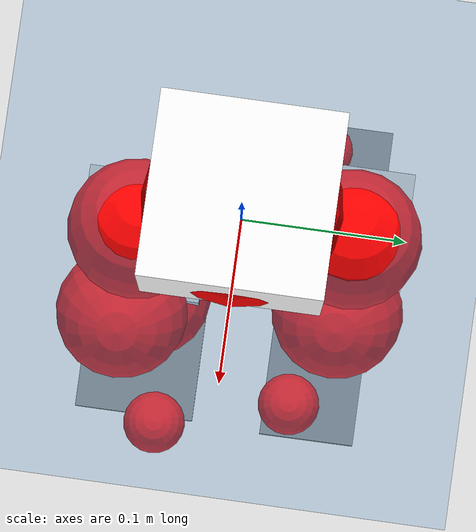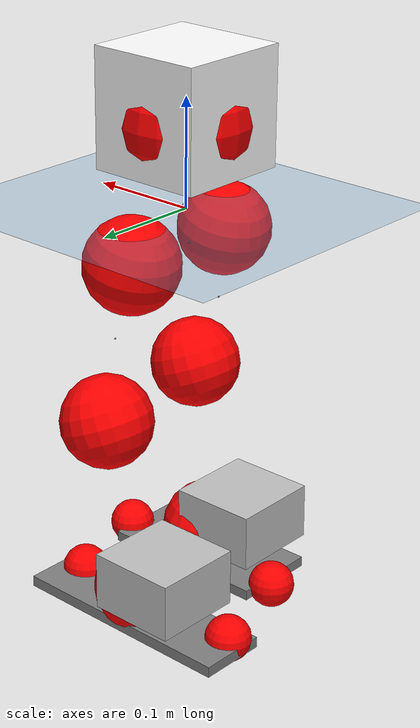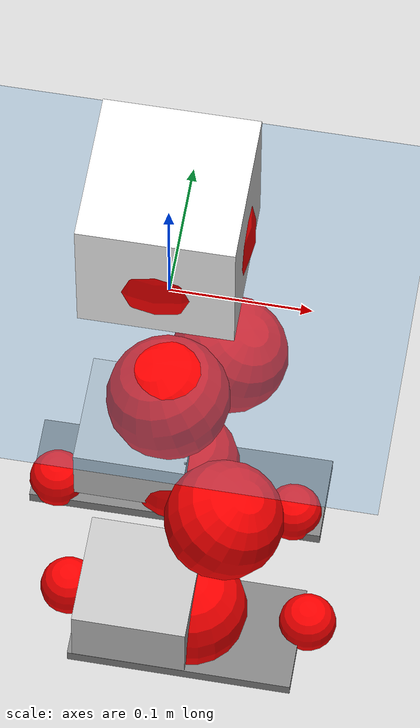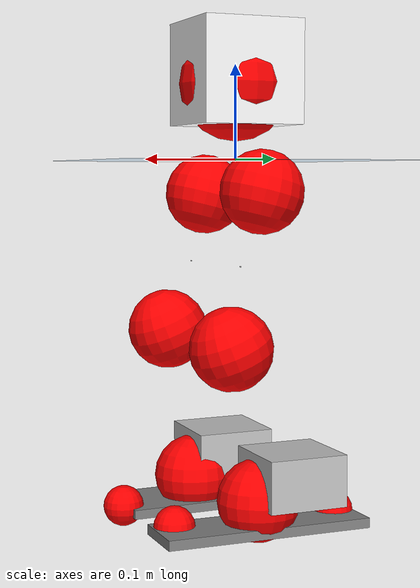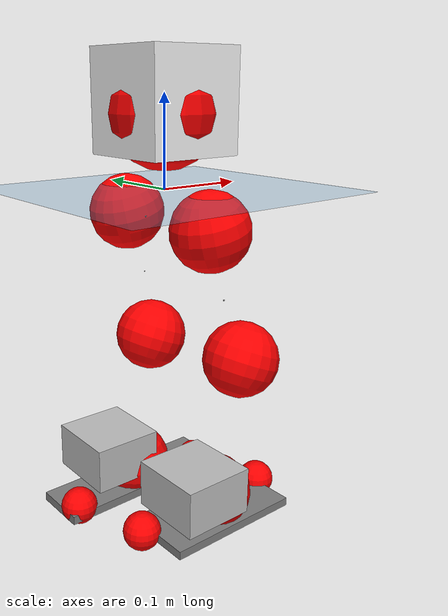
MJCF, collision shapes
<mujoco model="pi_12dof_release_v1">
  <compiler angle="radian" assetdir="assets" balanceinertia="true" inertiafromgeom="false"/>

  <option timestep="0.005" density="1.2" viscosity="2e-05"/>

  <size nkey="1"/>

  <visual>
    <quality shadowsize="8192"/>
    <map shadowclip="0.5"/>
  </visual>

  <default>
    <default class="/">
      <joint armature="0.01" damping="0.01" frictionloss="0.01"/>
      <geom contype="0" conaffinity="0" group="1" solref="-1000 -80"/>
      <site size="0.01 0.005 0.005" group="5"/>
      <general forcelimited="true" biastype="affine" gainprm="20" biasprm="0 -20 -0.5"/>
      <default class="foot">
        <geom size="0.0845 0.036 0.005" type="box" condim="6" group="4" priority="1" friction="0.9 0.2 0.2" solimp="0.015 1 0.005"/>
      </default>
      <default class="reward_collision_sphere">
        <geom group="5" rgba="1 0 0 1"/>
      </default>
    </default>
  </default>

  <asset>
    <texture type="skybox" colorspace="auto" name="//unnamed_texture_0" builtin="gradient" rgb1="0.95 0.95 0.95" rgb2="0.95 0.95 0.95" width="100" height="600"/>
    <texture type="2d" colorspace="auto" name="texplane" builtin="checker" rgb1="0.345 0.575 0.748" rgb2="0.345 0.575 0.748" markrgb="1 1 1" width="512" height="512"/>
    <material name="MatPlane" class="/" texture="texplane" texuniform="true" texrepeat="2 2" specular="0.9"/>
    <mesh name="baselink_1" class="/" file="baselink_1.STL"/>
    <mesh name="r_hip_pitch_link" class="/" file="r_hip_pitch_link.STL"/>
    <mesh name="r_hip_roll_link" class="/" file="r_hip_roll_link.STL"/>
    <mesh name="r_thigh_link" class="/" file="r_thigh_link.STL"/>
    <mesh name="r_calf_link" class="/" file="r_calf_link.STL"/>
    <mesh name="r_ankle_pitch_link" class="/" file="r_ankle_pitch_link.STL"/>
    <mesh name="r_ankle_roll_link" class="/" file="r_ankle_roll_link.STL"/>
    <mesh name="l_hip_pitch_link" class="/" file="l_hip_pitch_link.STL"/>
    <mesh name="l_hip_roll_link" class="/" file="l_hip_roll_link.STL"/>
    <mesh name="l_thigh_link" class="/" file="l_thigh_link.STL"/>
    <mesh name="l_calf_link" class="/" file="l_calf_link.STL"/>
    <mesh name="l_ankle_pitch_link" class="/" file="l_ankle_pitch_link.STL"/>
    <mesh name="l_ankle_roll_link" class="/" file="l_ankle_roll_link.STL"/>
  </asset>

  <worldbody>
    <geom name="floor" class="/" size="100 100 0.125" type="plane" group="0" material="MatPlane"/>
    <light name="toplight_shadow" class="/" pos="0 0 5" dir="0.0990148 0.0990148 -0.990148" type="directional" ambient="0.04 0.04 0.04" diffuse="0.55 0.55 0.55" specular="0.12 0.12 0.12"/>
    <light name="toplight_fill" class="/" pos="0 0 5" dir="0.0990148 0.0990148 -0.990148" type="directional" castshadow="false" ambient="0.04 0.04 0.04" diffuse="0.3 0.3 0.3" specular="0.08 0.08 0.08"/>
    <body name="trunk" pos="6.11848e-05 5.03479e-05 -0.00119129" quat="0.999999 -0.000516369 -0.000872608 0.000594868">
      <inertial pos="0.0139457 0.00739712 0.0484905" quat="0.693942 0.0092423 0.00934882 0.719911" mass="2.4779" diaginertia="0.0435854 0.00230264 0.0085041"/>
      <joint name="//unnamed_joint_0" type="free"/>
      <geom name="//unnamed_geom_1" class="/" type="mesh" density="0" rgba="1 1 1 1" mesh="baselink_1"/>
      <geom name="//unnamed_geom_2" class="/" size="0.0541264 0.0541264 0.0541264" pos="0 0 0.0917034" type="box" rgba="1 1 1 1"/>
      <geom name="//unnamed_geom_3" class="reward_collision_sphere" size="0.059539" pos="0 0 0.0802404"/>
      <site name="imu" class="/" pos="-0.043792 0.00238934 0.0435172" size="0.0108253"/>
      <camera name="track" class="/" pos="0 -1.52145 0" quat="0.707107 0.707107 0 0" mode="trackcom"/>
      <camera name="ego_camera" class="/" pos="0.100542 0 0.206333" quat="-0.5 -0.5 0.5 0.5"/>
      <body name="r_hip_pitch_link" pos="0.00585051 -0.0107098 -0.0344254" quat="0.992207 -0.000160514 -0.124601 5.93135e-06">
        <inertial pos="0.00179461 -0.0361853 -0.000395335" quat="-0.0215017 0.705858 -0.0284006 0.707457" mass="0.511371" diaginertia="0.000542061 3.07013e-05 0.000185824"/>
        <joint name="r_hip_pitch_joint" class="/" pos="0 0 0" axis="-0.0169221 -0.999854 0.0025083" range="-1.70196 1.43669" armature="0.0148088" damping="0.0172294" frictionloss="0.0119341"/>
        <geom name="//unnamed_geom_4" class="/" type="mesh" density="0" rgba="0.75294 0.75294 0.75294 1" mesh="r_hip_pitch_link"/>
        <geom name="//unnamed_geom_5" class="/" size="0.000541264 0.000541264 0.000541264" type="box" rgba="0.75294 0.75294 0.75294 1"/>
        <body name="r_hip_roll_link" pos="0.00379709 -0.052577 -0.00243339" quat="0.999991 -0.00390583 0.00120257 0.000623659">
          <inertial pos="0.00131083 0.0005485 -0.073692" quat="0.711143 -0.0815216 -0.111815 0.689295" mass="0.513591" diaginertia="0.00142289 7.7923e-05 0.000246526"/>
          <joint name="r_hip_roll_joint" class="/" pos="0 0 0" axis="-0.999587 0.0106755 -0.026696" stiffness="0.00380123" range="-0.0864243 0.509174" armature="0.0131739" damping="0.0484969" frictionloss="0.0058554"/>
          <geom name="//unnamed_geom_6" class="/" type="mesh" density="0" rgba="0.75294 0.75294 0.75294 1" mesh="r_hip_roll_link"/>
          <geom name="//unnamed_geom_7" class="/" size="0.000541264 0.000541264 0.000541264" type="box" rgba="0.75294 0.75294 0.75294 1"/>
          <geom name="//unnamed_geom_8" class="reward_collision_sphere" size="0.0433011"/>
          <body name="r_thigh_link" pos="-0.00547826 -0.00790245 -0.0752144" quat="1 0.000105826 5.72861e-05 0.000150323">
            <inertial pos="0.00212777 0.0019146 -0.0519159" quat="0.741309 0.671146 -0.00232844 0.00438681" mass="0.142776" diaginertia="0.000581648 2.4347e-05 0.000114059"/>
            <joint name="r_thigh_joint" class="/" pos="0 0 0" axis="0.00227129 -0.000984539 -0.999997" range="-0.192505 0.560228" armature="0.00552647" damping="0.00652361" frictionloss="0.00920739"/>
            <geom name="//unnamed_geom_9" class="/" type="mesh" density="0" rgba="0.75294 0.75294 0.75294 1" mesh="r_thigh_link"/>
            <geom name="//unnamed_geom_10" class="/" size="0.000541264 0.000541264 0.000541264" type="box" rgba="0.75294 0.75294 0.75294 1"/>
            <body name="r_calf_link" pos="0.00898568 0.000844247 -0.0789635" quat="0.947745 0.000452019 0.319028 0.000169766">
              <inertial pos="0.00399291 0.0101128 -0.0752291" quat="0.998682 -0.00151063 -0.0452761 0.0241085" mass="1.02161" diaginertia="0.016706 0.000806329 0.000376073"/>
              <joint name="r_calf_joint" class="/" pos="0 0 0" axis="0.022656 -0.999637 0.0146136" stiffness="0.00106294" range="-1.64093 0.608849" armature="0.0124763" damping="0.00535621" frictionloss="0.0118274"/>
              <geom name="//unnamed_geom_11" class="/" type="mesh" density="0" rgba="0.75294 0.75294 0.75294 1" mesh="r_calf_link"/>
              <geom name="//unnamed_geom_12" class="/" size="0.000541264 0.000541264 0.000541264" type="box" rgba="0.75294 0.75294 0.75294 1"/>
              <geom name="//unnamed_geom_13" class="reward_collision_sphere" size="0.0433011"/>
              <body name="r_ankle_pitch_link" pos="-0.00432989 0.00427009 -0.15351" quat="0.980737 0.00102233 -0.195331 0.000247111">
                <inertial pos="-0.00261525 0.00345808 0.00364401" quat="0.0162009 0.713523 0.00831972 0.700395" mass="0.203347" diaginertia="0.00139212 6.08679e-05 0.000208872"/>
                <joint name="r_ankle_pitch_joint" class="/" pos="0 0 0" axis="-0.0246789 -0.999681 0.00540799" stiffness="0.0254204" range="-1.45472 0.404953" armature="0.00858109" damping="0.0412562" frictionloss="0.00988362"/>
                <geom name="//unnamed_geom_14" class="/" type="mesh" density="0" rgba="0.75294 0.75294 0.75294 1" mesh="r_ankle_pitch_link"/>
                <geom name="//unnamed_geom_15" class="/" size="0.0422186 0.0433011 0.0270632" type="box" rgba="0.75294 0.75294 0.75294 1"/>
                <body name="r_ankle_roll_link" pos="0.104555 0.00758819 -0.000472764" quat="0.999998 -0.000882323 0.00140313 0.00089126">
                  <inertial pos="-0.0259104 0.000646886 -0.0185654" quat="0.565088 0.396798 0.418837 0.589747" mass="0.57617" diaginertia="0.00440118 0.000249322 0.000520308"/>
                  <joint name="r_ankle_roll_joint" class="/" pos="0 0 0" axis="-0.999856 -0.0154012 0.00712753" range="-0.24553 0.193335" armature="0.00582277" damping="0.00217426" frictionloss="0.0107502"/>
                  <geom name="//unnamed_geom_16" class="/" type="mesh" density="0" rgba="0.75294 0.75294 0.75294 1" mesh="r_ankle_roll_link"/>
                  <geom name="//unnamed_geom_17" class="/" type="mesh" rgba="0.75294 0.75294 0.75294 1" mesh="r_ankle_roll_link"/>
                  <geom name="right_foot" class="foot" size="0.083974 0.0413686 0.00493442" pos="-0.0683688 0 -0.0504368"/>
                  <geom name="//unnamed_geom_19" class="reward_collision_sphere" size="0.0433011" pos="-0.0670282 0 -0.0229258"/>
                  <geom name="//unnamed_geom_20" class="reward_collision_sphere" size="0.0216505" pos="0.0201085 0.0152145 -0.0458517"/>
                  <geom name="//unnamed_geom_21" class="reward_collision_sphere" size="0.0216505" pos="-0.160868 0.0152145 -0.0458517"/>
                  <site name="right_foot" class="foot" pos="-0.0683688 0 -0.0504368" size="0.0108253"/>
                </body>
              </body>
            </body>
          </body>
        </body>
      </body>
      <body name="l_hip_pitch_link" pos="-0.00775716 0.0231911 -0.0301425" quat="0.992197 -0.00029634 -0.12468 0.000204043">
        <inertial pos="0.000792117 0.0362018 0.00921168" quat="-0.0153786 0.719329 0.0419765 0.69323" mass="0.440493" diaginertia="0.000424715 2.35959e-05 0.000184028"/>
        <joint name="l_hip_pitch_joint" class="/" pos="0 0 0" axis="-0.00639484 0.999979 0.000900867" stiffness="0.0227116" range="-1.22323 1.75847" armature="0.0118448" damping="0" frictionloss="0.0134711"/>
        <geom name="//unnamed_geom_22" class="/" type="mesh" density="0" rgba="0.75294 0.75294 0.75294 1" mesh="l_hip_pitch_link"/>
        <geom name="//unnamed_geom_23" class="/" size="0.000541264 0.000541264 0.000541264" type="box" rgba="0.75294 0.75294 0.75294 1"/>
        <body name="l_hip_roll_link" pos="0.00632726 0.0451766 -0.0029476" quat="1 5.50814e-05 0.000810231 -0.000549652">
          <inertial pos="0.00802071 -0.000781353 -0.0603356" quat="0.697586 -0.0777497 -0.0832342 0.70739" mass="0.537923" diaginertia="0.00173332 7.04402e-05 0.000266246"/>
          <joint name="l_hip_roll_joint" class="/" pos="0 0 0" axis="-0.999996 -0.00285498 0.000772249" range="-0.524517 0.100178" armature="0.0108975" damping="0" frictionloss="0.0128285"/>
          <geom name="//unnamed_geom_24" class="/" type="mesh" density="0" rgba="0.75294 0.75294 0.75294 1" mesh="l_hip_roll_link"/>
          <geom name="//unnamed_geom_25" class="/" size="0.000541264 0.000541264 0.000541264" type="box" rgba="0.75294 0.75294 0.75294 1"/>
          <geom name="//unnamed_geom_26" class="reward_collision_sphere" size="0.0433011"/>
          <body name="l_thigh_link" pos="0.0036345 -0.00184868 -0.0787111" quat="1 0.000163444 -0.000128815 -0.000302334">
            <inertial pos="-0.00308486 -0.00872725 -0.0537793" quat="0.690914 0.722916 -0.00359092 0.00418179" mass="0.12436" diaginertia="0.000496899 1.88809e-05 9.82761e-05"/>
            <joint name="l_thigh_joint" class="/" pos="0 0 0" axis="0.000687255 -0.00243614 -0.999997" stiffness="0.0356714" range="-0.419334 0.380452" armature="0.0103189" damping="0.00023827" frictionloss="0.0115868"/>
            <geom name="//unnamed_geom_27" class="/" type="mesh" density="0" rgba="0.75294 0.75294 0.75294 1" mesh="l_thigh_link"/>
            <geom name="//unnamed_geom_28" class="/" size="0.000541264 0.000541264 0.000541264" type="box" rgba="0.75294 0.75294 0.75294 1"/>
            <body name="l_calf_link" pos="-0.0106429 0.00157008 -0.0832121" quat="0.947522 0.000952552 0.319687 -0.00107654">
              <inertial pos="0.00432568 -0.000680373 -0.0706223" quat="0.998604 -0.0424819 0.0307011 0.00652493" mass="1.06402" diaginertia="0.0171922 0.00102436 0.000391892"/>
              <joint name="l_calf_joint" class="/" pos="0 0 0" axis="-0.000615666 0.999449 -0.0331813" range="-0.667098 1.62629" armature="0.0107783" damping="0.0341013" frictionloss="0.0100415"/>
              <geom name="//unnamed_geom_29" class="/" type="mesh" density="0" rgba="0.75294 0.75294 0.75294 1" mesh="l_calf_link"/>
              <geom name="//unnamed_geom_30" class="/" size="0.000541264 0.000541264 0.000541264" type="box" rgba="0.75294 0.75294 0.75294 1"/>
              <geom name="//unnamed_geom_31" class="reward_collision_sphere" size="0.0433011"/>
              <body name="l_ankle_pitch_link" pos="-0.00951786 -0.00100423 -0.152173" quat="0.980342 0.00280842 -0.197278 0.00166226">
                <inertial pos="0.00790352 -0.00454253 9.54259e-05" quat="-0.00223605 0.707011 0.00232706 0.707195" mass="0.25295" diaginertia="0.00151144 5.82654e-05 0.00024567"/>
                <joint name="l_ankle_pitch_joint" class="/" pos="0 0 0" axis="-0.00029063 0.999961 0.00882778" range="-0.44194 1.39644" armature="0.0131235" damping="0" frictionloss="0.00972908"/>
                <geom name="//unnamed_geom_32" class="/" type="mesh" density="0" rgba="0.75294 0.75294 0.75294 1" mesh="l_ankle_pitch_link"/>
                <geom name="//unnamed_geom_33" class="/" size="0.0422186 0.0433011 0.0270632" type="box" rgba="0.75294 0.75294 0.75294 1"/>
                <body name="l_ankle_roll_link" pos="0.101796 -0.00659511 -0.00041742" quat="0.999991 0.000382722 -0.0035731 0.00245049">
                  <inertial pos="-0.0389944 0.00230298 -0.0171878" quat="0.577061 0.434935 0.409109 0.557191" mass="0.632724" diaginertia="0.00496701 0.000261911 0.000580443"/>
                  <joint name="l_ankle_roll_joint" class="/" pos="0 0 0" axis="-0.999975 -0.00631318 -0.00314309" stiffness="0.0420781" range="-0.300647 0.254207" armature="0.00696689" damping="0" frictionloss="0.00952727"/>
                  <geom name="//unnamed_geom_34" class="/" type="mesh" density="0" rgba="0.75294 0.75294 0.75294 1" mesh="l_ankle_roll_link"/>
                  <geom name="//unnamed_geom_35" class="/" type="mesh" rgba="0.75294 0.75294 0.75294 1" mesh="l_ankle_roll_link"/>
                  <geom name="left_foot" class="foot" size="0.111443 0.0328608 0.00523323" pos="-0.0683688 0 -0.0504368"/>
                  <geom name="//unnamed_geom_37" class="reward_collision_sphere" size="0.0433011" pos="-0.0670282 0 -0.0229258"/>
                  <geom name="//unnamed_geom_38" class="reward_collision_sphere" size="0.0216505" pos="0.0201085 -0.0152145 -0.0458517"/>
                  <geom name="//unnamed_geom_39" class="reward_collision_sphere" size="0.0216505" pos="-0.160868 -0.0152145 -0.0458517"/>
                  <site name="left_foot" class="foot" pos="-0.0683688 0 -0.0504368" size="0.0108253"/>
                </body>
              </body>
            </body>
          </body>
        </body>
      </body>
    </body>
  </worldbody>

  <contact>
    <pair class="/" geom1="floor" geom2="right_foot" name="//unnamed_contact_1"/>
    <pair class="/" geom1="floor" geom2="left_foot" name="//unnamed_contact_0"/>
  </contact>

  <actuator>
    <general name="r_hip_pitch_joint" class="/" joint="r_hip_pitch_joint" forcerange="-17.1348 17.1348" gainprm="27.5552" biasprm="0 -27.5552 -0.604393"/>
    <general name="r_hip_roll_joint" class="/" joint="r_hip_roll_joint" forcerange="-22.8476 22.8476" gainprm="27.5552" biasprm="0 -27.5552 -0.604393"/>
    <general name="r_thigh_joint" class="/" joint="r_thigh_joint" forcerange="-24.4576 24.4576" gainprm="27.5552" biasprm="0 -27.5552 -0.604393"/>
    <general name="r_calf_joint" class="/" joint="r_calf_joint" forcerange="-15.4627 15.4627" gainprm="27.5552" biasprm="0 -27.5552 -0.604393"/>
    <general name="r_ankle_pitch_joint" class="/" joint="r_ankle_pitch_joint" forcerange="-23.4582 23.4582" gainprm="27.5552" biasprm="0 -27.5552 -0.604393"/>
    <general name="r_ankle_roll_joint" class="/" joint="r_ankle_roll_joint" forcerange="-21.2309 21.2309" gainprm="27.5552" biasprm="0 -27.5552 -0.604393"/>
    <general name="l_hip_pitch_joint" class="/" joint="l_hip_pitch_joint" forcerange="-28.114 28.114" gainprm="27.5552" biasprm="0 -27.5552 -0.604393"/>
    <general name="l_hip_roll_joint" class="/" joint="l_hip_roll_joint" forcerange="-30.6698 30.6698" gainprm="27.5552" biasprm="0 -27.5552 -0.604393"/>
    <general name="l_thigh_joint" class="/" joint="l_thigh_joint" forcerange="-23.6146 23.6146" gainprm="27.5552" biasprm="0 -27.5552 -0.604393"/>
    <general name="l_calf_joint" class="/" joint="l_calf_joint" forcerange="-24.1808 24.1808" gainprm="27.5552" biasprm="0 -27.5552 -0.604393"/>
    <general name="l_ankle_pitch_joint" class="/" joint="l_ankle_pitch_joint" forcerange="-18.1656 18.1656" gainprm="27.5552" biasprm="0 -27.5552 -0.604393"/>
    <general name="l_ankle_roll_joint" class="/" joint="l_ankle_roll_joint" forcerange="-22.0579 22.0579" gainprm="27.5552" biasprm="0 -27.5552 -0.604393"/>
  </actuator>

  <sensor>
    <gyro site="imu" name="imu_angular_velocity"/>
    <velocimeter site="imu" name="imu_linear_velocity"/>
    <framelinvel objtype="site" objname="left_foot" name="left_foot_global_linear_velocity"/>
    <framelinvel objtype="site" objname="right_foot" name="right_foot_global_linear_velocity"/>
  </sensor>

  <keyframe>
    <key name="home" qpos="0 0 0.291 1 0 0 0 0.4 0 0 -0.8 0.4 0 -0.4 0 0 0.8 -0.4 0"/>
  </keyframe>
</mujoco>
